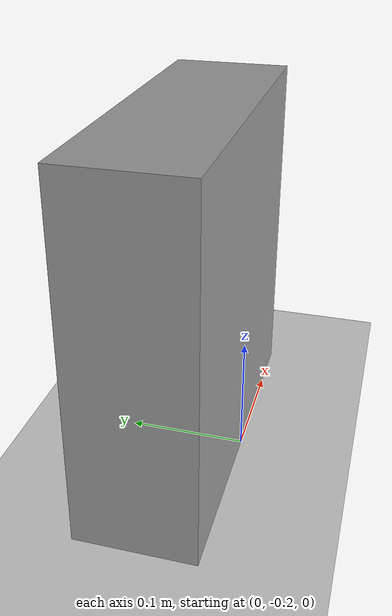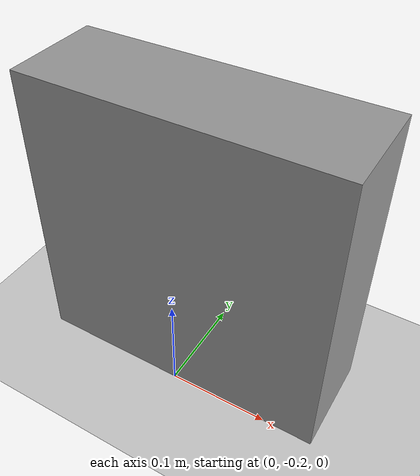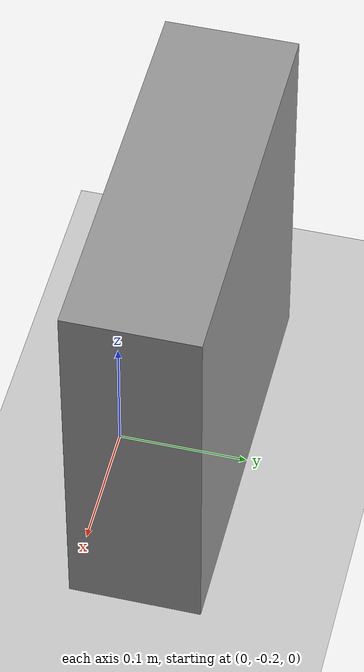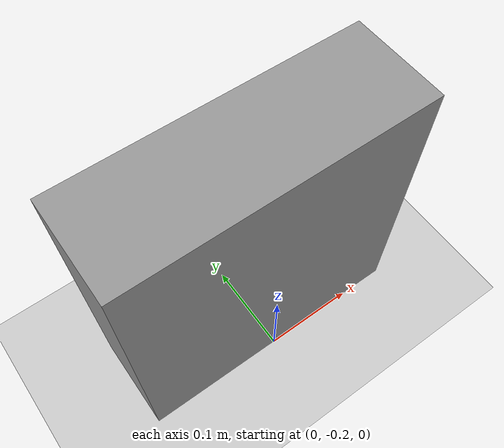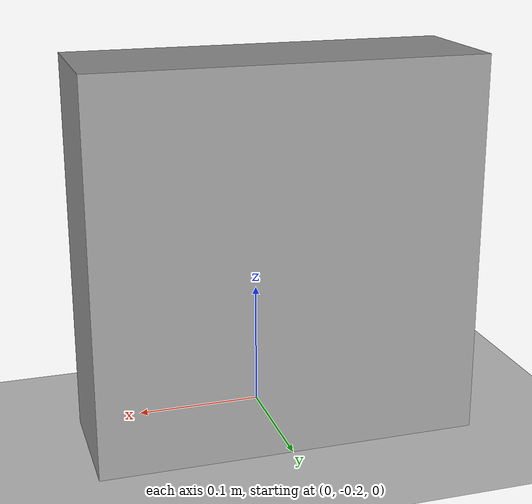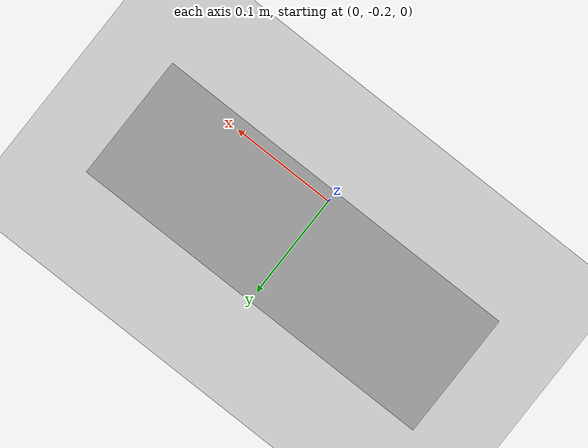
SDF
<?xml version="1.0" ?>
<sdf version="1.4">
  <world name="default">
    <light type="directional" name="lab_light">
      <pose>0.86 1.96 2.5 -1.55 0 0</pose>
      <diffuse>.8 .8 .8 1</diffuse>
      <specular>.2 .2 .2 1</specular>
      <attenuation>
        <range>20</range>
        <constant>0.9</constant>
        <linear>0.01</linear>
        <quadratic>0.001</quadratic>
      </attenuation>
      <direction>0 0 -1</direction>
      <cast_shadows>true</cast_shadows>
    </light>
    <include>
      <uri>model://ground_plane</uri>
      <static>true</static>
      <name>ground_plane</name>
      <pose>0.0 0.0 0.0 0.0 -0.0 0.0</pose>
    </include>
    <include>
      <uri>model://hybrid_controller_testing_box</uri>
      <static>true</static>
      <name>hybrid_controller_testing_box</name>
      <pose>0.0 -0.15 0.15 0.0 -0.0 0.0</pose>
    </include>
    <physics type="ode">
      <gravity>0.000000 0.000000 -9.810000</gravity>
      <ode>
        <solver>
          <type>quick</type>
          <iters>100</iters>
          <precon_iters>0</precon_iters>
          <sor>1.000000</sor>
        </solver>
        <constraints>
          <cfm>0.000000</cfm>
          <erp>0.500000</erp>
          <contact_max_correcting_vel>1000.000000</contact_max_correcting_vel>
          <contact_surface_layer>0.00000</contact_surface_layer>
        </constraints>
      </ode>
      <real_time_update_rate>1000.0</real_time_update_rate>
      <max_step_size>0.001000</max_step_size>
    </physics>
    <scene>
      <ambient>0.4 0.4 0.4 1</ambient>
      <background>0.7 0.7 1 1</background>
      <shadows>1</shadows>
    </scene>
    <gui fullscreen='0'>
      <camera name='user_camera'>
        <pose frame=''>2.8784 4.2586 1.43117 0 0.083643 -2.30699</pose>
        <view_controller>orbit</view_controller>
      </camera>
    </gui>
  </world>
</sdf>

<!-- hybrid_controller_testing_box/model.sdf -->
<sdf version='1.6'>
  <model name='hybrid_controller_testing_box'>
    <link name='link'>
      <inertial>
        <mass>1</mass>
        <inertia>
          <ixx>0.166667</ixx>
          <ixy>0</ixy>
          <ixz>0</ixz>
          <iyy>0.166667</iyy>
          <iyz>0</iyz>
          <izz>0.166667</izz>
        </inertia>
        <pose frame=''>0 0 0 0 -0 0</pose>
      </inertial>
      <self_collide>0</self_collide>
      <enable_wind>0</enable_wind>
      <kinematic>0</kinematic>
      <pose frame=''>0 0 0 0 -0 0</pose>
      <gravity>1</gravity>
      <visual name='visual'>
        <geometry>
          <box>
            <size>0.3 0.1 0.3</size>
          </box>
        </geometry>
        <material>
          <script>
            <name>Gazebo/Grey</name>
            <uri>file://media/materials/scripts/gazebo.material</uri>
          </script>
          <shader type='vertex'>
            <normal_map>__default__</normal_map>
          </shader>
          <ambient>0.3 0.3 0.3 1</ambient>
          <diffuse>0.7 0.7 0.7 1</diffuse>
          <specular>0.01 0.01 0.01 1</specular>
          <emissive>0 0 0 1</emissive>
        </material>
        <pose frame=''>0 0 0 0 -0 0</pose>
        <transparency>0</transparency>
        <cast_shadows>1</cast_shadows>
      </visual>
      <collision name='collision'>
        <laser_retro>0</laser_retro>
        <max_contacts>10</max_contacts>
        <pose frame=''>0 0 0 0 -0 0</pose>
        <geometry>
          <box>
            <size>0.3 0.1 0.3</size>
          </box>
        </geometry>
        <surface>
          <friction>
            <ode>
              <mu>1</mu>
              <mu2>1</mu2>
              <fdir1>0 0 0</fdir1>
              <slip1>0</slip1>
              <slip2>0</slip2>
            </ode>
            <torsional>
              <coefficient>1</coefficient>
              <patch_radius>0</patch_radius>
              <surface_radius>0</surface_radius>
              <use_patch_radius>1</use_patch_radius>
              <ode>
                <slip>0</slip>
              </ode>
            </torsional>
          </friction>
          <bounce>
            <restitution_coefficient>0</restitution_coefficient>
            <threshold>1e+06</threshold>
          </bounce>
          <contact>
            <collide_without_contact>0</collide_without_contact>
            <collide_without_contact_bitmask>1</collide_without_contact_bitmask>
            <collide_bitmask>1</collide_bitmask>
            <ode>
              <soft_cfm>0</soft_cfm>
              <soft_erp>0.2</soft_erp>
              <kp>1e+13</kp>
              <kd>1</kd>
              <max_vel>0.01</max_vel>
              <min_depth>0</min_depth>
            </ode>
            <bullet>
              <split_impulse>1</split_impulse>
              <split_impulse_penetration_threshold>-0.01</split_impulse_penetration_threshold>
              <soft_cfm>0</soft_cfm>
              <soft_erp>0.2</soft_erp>
              <kp>1e+13</kp>
              <kd>1</kd>
            </bullet>
          </contact>
        </surface>
      </collision>
    </link>
    <static>0</static>
    <allow_auto_disable>1</allow_auto_disable>
  </model>
</sdf>
